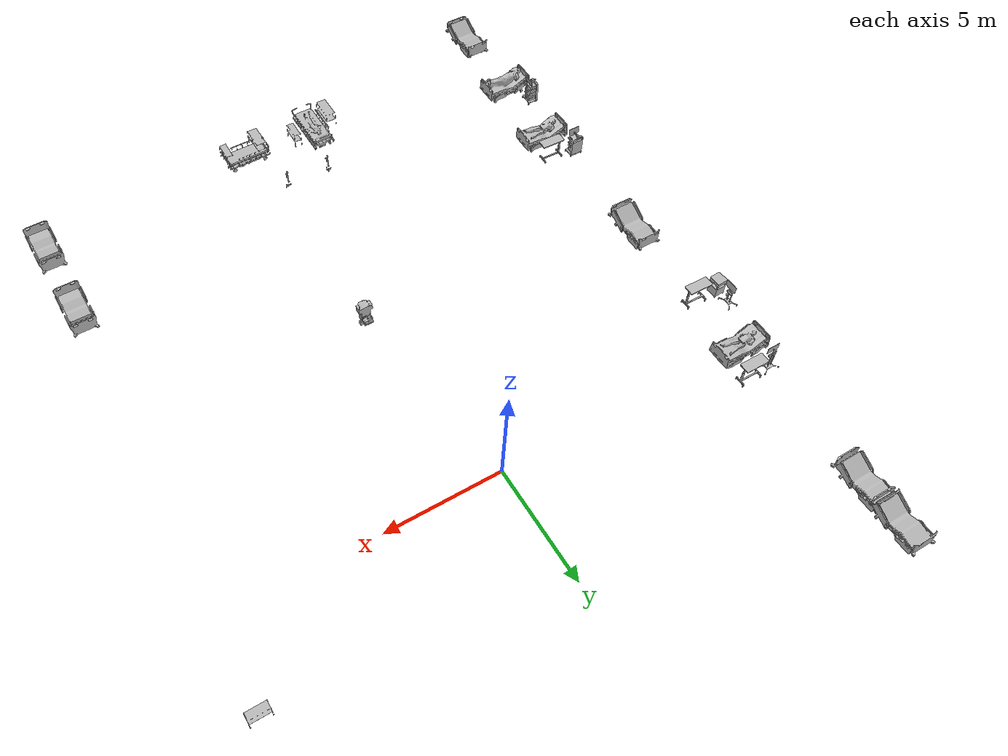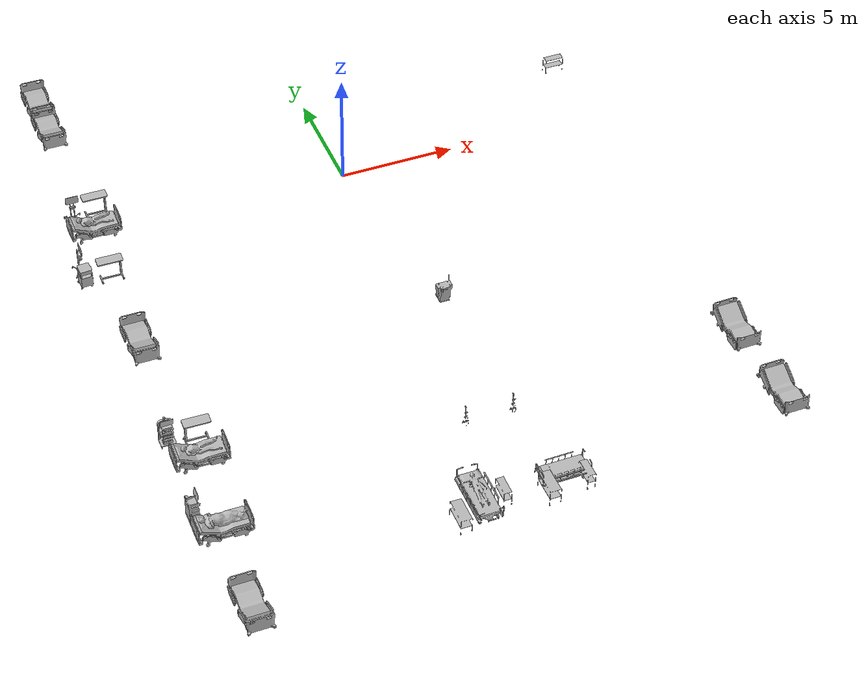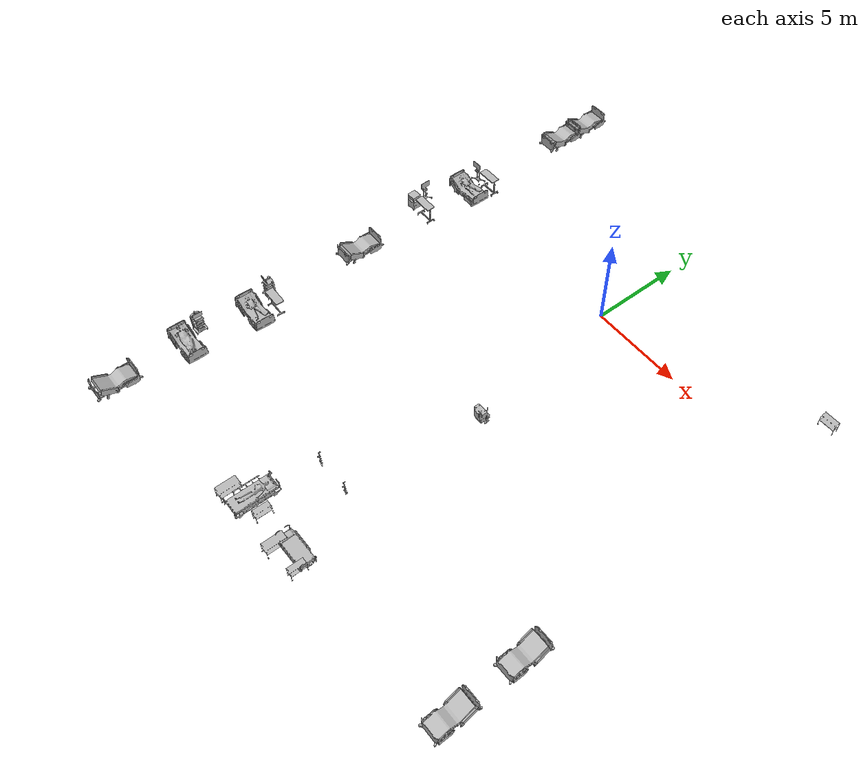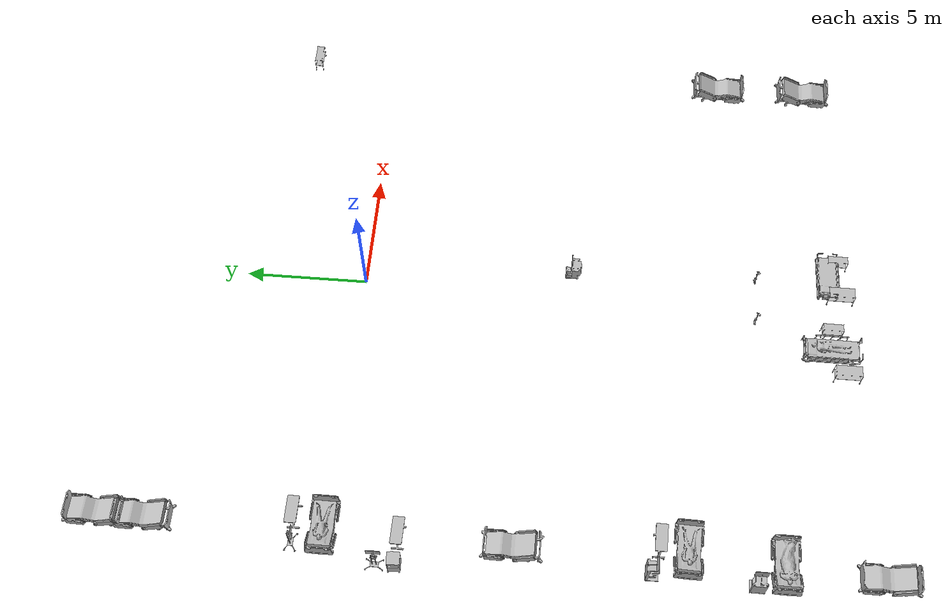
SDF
<sdf version="1.6">
 <world name="world">
  <gravity>0 0 -9.8</gravity>
  <physics default="0" name="default_physics" type="ode">
   <max_step_size>0.001</max_step_size>
   <real_time_factor>1</real_time_factor>
   <real_time_update_rate>1000</real_time_update_rate>
  </physics>
  <model name="CGMClassic_1">
   <include><uri>model://CGMClassic</uri></include>
   <pose>11.1777 -18.4129 0 0 0 -1.5656</pose>
  </model>
  <model name="CGMClassic_2">
   <include><uri>model://CGMClassic</uri></include>
   <pose>11.1179 -14.6493 0 0 0 -1.5656</pose>
  </model>
  <model name="InstrumentCart1_1">
   <include><uri>model://InstrumentCart1</uri></include>
   <pose>-11.6115 -12.2426 0 0 -0 0</pose>
  </model>
  <model name="SurgicalTrolley_1">
   <include><uri>model://SurgicalTrolley</uri></include>
   <pose>11.4301 3.56328 0 0 -0 0</pose>
  </model>
  <model name="CGMClassic_3">
   <include><uri>model://CGMClassic</uri></include>
   <pose>-11.2304 -21.1134 0 0 -0 1.56641</pose>
  </model>
  <model name="MopCart3_1">
   <include><uri>model://MopCart3</uri></include>
   <pose>1.07736 -8.59036 -6.4e-05 -1e-06 1e-06 0</pose>
  </model>
  <model name="ElderLadyPatient_1">
   <include><uri>model://ElderLadyPatient</uri></include>
   <pose>-10.9972 0.231354 0.001655 0 -1e-06 0</pose>
  </model>
  <model name="ElderLadyPatient_2">
   <include><uri>model://ElderLadyPatient</uri></include>
   <pose>-10.8133 -13.5925 0.001656 0 -0 -0.025052</pose>
  </model>
  <model name="CGMClassic_4">
   <include><uri>model://CGMClassic</uri></include>
   <pose>-11.0878 -7.00992 0 0 -0 1.56296</pose>
  </model>
  <model name="InstrumentCart1_2">
   <include><uri>model://InstrumentCart1</uri></include>
   <pose>-11.8071 -16.1825 0 0 -0 1.56702</pose>
  </model>
  <model name="ElderMalePatient_1">
   <include><uri>model://ElderMalePatient</uri></include>
   <pose>-11.1165 -17.2377 0.001655 0 2e-06 0</pose>
  </model>
  <model name="InstrumentCart2_1">
   <include><uri>model://InstrumentCart2</uri></include>
   <pose>-12.0906 -1.87329 0.051875 0 -0 1.57773</pose>
  </model>
  <model name="InstrumentCart2_2">
   <include><uri>model://InstrumentCart2</uri></include>
   <pose>-11.5231 1.34237 0 0 -0 0</pose>
  </model>
  <model name="CGMClassic_5">
   <include><uri>model://CGMClassic</uri></include>
   <pose>-11.0106 8.9505 -0.008203 0.0004 -0.035019 1.56285</pose>
  </model>
  <model name="CGMClassic_6">
   <include><uri>model://CGMClassic</uri></include>
   <pose>-11.025 7.10335 0 0 -0.035021 1.57427</pose>
  </model>
  <model name="BedTable_1">
   <include><uri>model://BedTable</uri></include>
   <pose>-10.4759 1.39442 0.001186 0 2e-06 0</pose>
  </model>
  <model name="BedTable_2">
   <include><uri>model://BedTable</uri></include>
   <pose>-10.9732 -2.66105 0.001182 0 -0 -0.017818</pose>
  </model>
  <model name="BedTable_3">
   <include><uri>model://BedTable</uri></include>
   <pose>-10.5874 -12.5084 0.001189 0 -0 3.11588</pose>
  </model>
  <model name="BedsideTable_1">
   <include><uri>model://BedsideTable</uri></include>
   <pose>-12.0922 -2.61243 0.000179 1e-06 -0 0.05292</pose>
  </model>
  <model name="TrolleyBedPatient_1">
   <include><uri>model://TrolleyBedPatient</uri></include>
   <pose>-1.83202 -19.2612 0 0 -0 0</pose>
  </model>
  <model name="TrolleyBed_2">
   <include><uri>model://TrolleyBed</uri></include>
   <pose>1.55325 -19.2199 -1e-06 0 -2e-06 0.007695</pose>
  </model>
  <model name="Shower_1">
   <include><uri>model://Shower</uri></include>
   <pose>-1.07422 -16.1332 0 0 -0 0</pose>
  </model>
  <model name="Shower_2">
   <include><uri>model://Shower</uri></include>
   <pose>0.853327 -16.1492 0 0 -0 0</pose>
  </model>
  <model name="SurgicalTrolleyMed_1">
   <include><uri>model://SurgicalTrolleyMed</uri></include>
   <pose>-2.81558 -19.9072 0 0 0 -1.56931</pose>
  </model>
  <model name="SurgicalTrolley_2">
   <include><uri>model://SurgicalTrolley</uri></include>
   <pose>-0.896098 -19.3527 0 0 0 -1.58175</pose>
  </model>
  <model name="SurgicalTrolley_3">
   <include><uri>model://SurgicalTrolley</uri></include>
   <pose>2.33278 -19.6614 0 0 -0 1.57031</pose>
  </model>
  <model name="SurgicalTrolleyMed_2">
   <include><uri>model://SurgicalTrolleyMed</uri></include>
   <pose>0.770804 -19.7749 0 0 0 -1.56798</pose>
  </model>
 </world>
</sdf>

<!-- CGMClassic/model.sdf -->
<sdf version="1.6">
  <model name="CGMClassic">
   <static>true</static>
    <link name="body">
      <pose>0 0 0 0 0 0</pose>

      <visual name="visual">
        <geometry>
          <mesh>
            <uri>model://CGMClassic/meshes/CGMClassic.obj</uri>
            <scale>0.01 0.01 0.01</scale>
          </mesh>
        </geometry>
      </visual>

      <collision name="collision">
        <geometry>
          <mesh>
            <uri>model://CGMClassic/meshes/CGMClassic.obj</uri>
            <scale>0.01 0.01 0.01</scale>
          </mesh>
        </geometry>
      </collision>

    </link>
  </model>
</sdf>

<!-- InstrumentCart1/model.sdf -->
<sdf version="1.6">
  <model name="InstrumentCart1">
   <static>true</static>
    <link name="body">
      <pose>0 0 0 0 0 0</pose>

      <visual name="visual">
        <geometry>
          <mesh>
            <uri>model://InstrumentCart1/meshes/InstrumentCart1.obj</uri>
          </mesh>
        </geometry>
      </visual>

      <collision name="collision">
        <geometry>
          <mesh>
            <uri>model://InstrumentCart1/meshes/InstrumentCart1.obj</uri>
          </mesh>
        </geometry>
      </collision>

    </link>
  </model>
</sdf>

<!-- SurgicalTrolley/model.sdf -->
<sdf version="1.6">
  <model name='SurgicalTrolley'>
   <static>true</static>
    <link name="body">
      <pose>0 0 0 0 0 0</pose>

      <visual name="visual">
        <geometry>
          <mesh>
            <uri>model://SurgicalTrolley/meshes/trolley.obj</uri>
          </mesh>
        </geometry>
      </visual>

      <collision name="collision">
        <geometry>
          <mesh>
            <uri>model://SurgicalTrolley/meshes/trolley.obj</uri>
          </mesh>
        </geometry>
      </collision>

    </link>
  </model>
</sdf>

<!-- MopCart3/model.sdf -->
<sdf version="1.5">
  <model name="MopCart3">
    <link name="link">
      <pose>0 0 0 0 0 0</pose>

        <visual name="visual">
          <geometry>
            <mesh><uri>model://MopCart3/meshes/MopCart3.obj</uri></mesh>
          </geometry>
        </visual>

        <collision name="collision">
          <geometry>
            <mesh><uri>model://MopCart3/meshes/MopCart3.obj</uri></mesh>
          </geometry>
        </collision>

    </link>
  </model>
</sdf>

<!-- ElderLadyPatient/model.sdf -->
<sdf version="1.6">
  <model name='ElderLadyPatient'>
    <link name="body">
      <pose>0 0 0 0 0 0</pose>

      <visual name="visual">
        <geometry>
          <mesh>
            <uri>model://ElderLadyPatient/meshes/ElderFemale.obj</uri>
          </mesh>
        </geometry>
      </visual>

      <collision name="collision">
        <geometry>
          <mesh>
            <uri>model://ElderLadyPatient/meshes/ElderFemale.obj</uri>
          </mesh>
        </geometry>
      </collision>

    </link>
  </model>
</sdf>

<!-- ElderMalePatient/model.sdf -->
<sdf version="1.5">
  <model name="ElderMalePatient">
    <link name="link">
      <pose>0 0 0 0 0 0</pose>

        <visual name="visual">
          <geometry>
            <mesh><uri>model://ElderMalePatient/meshes/ElderMalePatient.obj</uri></mesh>
          </geometry>
        </visual>

        <collision name="collision">
          <geometry>
            <mesh><uri>model://ElderMalePatient/meshes/ElderMalePatient.obj</uri></mesh>
          </geometry>
        </collision>

    </link>
  </model>
</sdf>

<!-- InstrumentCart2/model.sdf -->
<sdf version="1.6">
  <model name="InstrumentCart2">
   <static>true</static>
    <link name="body">
      <pose>0 0 0 0 0 0</pose>

      <visual name="visual">
        <geometry>
          <mesh>
            <uri>model://InstrumentCart2/meshes/InstrumentCart2.obj</uri>
          </mesh>
        </geometry>
      </visual>

      <collision name="collision">
        <geometry>
          <mesh>
            <uri>model://InstrumentCart2/meshes/InstrumentCart2.obj</uri>
          </mesh>
        </geometry>
      </collision>

    </link>
  </model>
</sdf>

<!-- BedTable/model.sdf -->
<sdf version="1.6">
  <model name='BedTable'>
    <link name="body">
      <pose>0 0 0 0 0 0</pose>

      <visual name="visual">
        <geometry>
          <mesh>
            <uri>model://BedTable/meshes/BedTable.obj</uri>
          </mesh>
        </geometry>
      </visual>

      <collision name="collision">
        <geometry>
          <mesh>
            <uri>model://BedTable/meshes/BedTable_Col.obj</uri>
          </mesh>
        </geometry>
      </collision>

    </link>
  </model>
</sdf>

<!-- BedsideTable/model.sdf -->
<sdf version="1.6">
  <model name='BedsideTable'>
    <link name="body">
      <pose>0 0 0 0 0 -1.5708</pose>

      <visual name="visual">
        <geometry>
          <mesh>
            <uri>model://BedsideTable/meshes/BedsideTable.obj</uri>
          </mesh>
        </geometry>
      </visual>

      <collision name="collision">
        <geometry>
          <mesh>
            <uri>model://BedsideTable/meshes/BedsideTable_Col.obj</uri>
          </mesh>
        </geometry>
      </collision>

    </link>
  </model>
</sdf>

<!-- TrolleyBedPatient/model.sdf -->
<sdf version="1.6">
  <model name="TrolleyBedPatient">
   <static>true</static>
    <link name="body">
      <pose>0 0 0 0 0 0</pose>

      <visual name="visual">
        <geometry>
          <mesh>
            <uri>model://TrolleyBedPatient/meshes/TrolleyBedPatient.obj</uri>
          </mesh>
        </geometry>
      </visual>

      <collision name="collision">
        <geometry>
          <mesh>
            <uri>model://TrolleyBedPatient/meshes/TrolleyBedPatient.obj</uri>
          </mesh>
        </geometry>
      </collision>

    </link>
  </model>
</sdf>

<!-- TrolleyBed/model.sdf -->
<sdf version="1.5">
  <model name="TrolleyBed">
    <link name="link">
      <pose>0 0 0 0 0 0</pose>

        <visual name="visual">
          <geometry>
            <mesh><uri>model://TrolleyBed/meshes/TrolleyBed.obj</uri></mesh>
          </geometry>
        </visual>

        <collision name="collision">
          <geometry>
            <mesh><uri>model://TrolleyBed/meshes/TrolleyBed.obj</uri></mesh>
          </geometry>
        </collision>

    </link>
  </model>
</sdf>

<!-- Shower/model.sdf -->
<sdf version="1.6">
  <model name='Shower'>
<static>true</static>
    <link name="body">
      <pose>0 0 0 0 0 0</pose>

      <visual name="visual">
        <geometry>
          <mesh>
            <uri>model://Shower/meshes/Shower.obj</uri>
            <scale>1 1 1</scale>
          </mesh>
        </geometry>
      </visual>

      <collision name="collision">
        <geometry>
          <mesh>
            <uri>model://Shower/meshes/Shower.obj</uri>
            <scale>1 1 1</scale>
          </mesh>
        </geometry>
      </collision>

    </link>
  </model>
</sdf>

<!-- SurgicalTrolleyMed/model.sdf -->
<sdf version="1.6">
  <model name="SurgicalTrolleyMed">
   <static>true</static>
    <link name="body">
      <pose>0 0 0 0 0 0</pose>

      <visual name="visual">
        <geometry>
          <mesh>
            <uri>model://SurgicalTrolleyMed/meshes/SurgicalTrolleyMed.obj</uri>
          </mesh>
        </geometry>
      </visual>

      <collision name="collision">
        <geometry>
          <mesh>
            <uri>model://SurgicalTrolleyMed/meshes/SurgicalTrolleyMed_Col.obj</uri>
          </mesh>
        </geometry>
      </collision>

    </link>
  </model>
</sdf>
